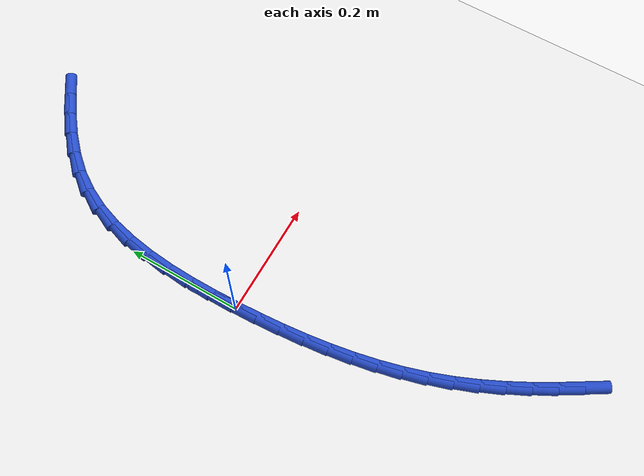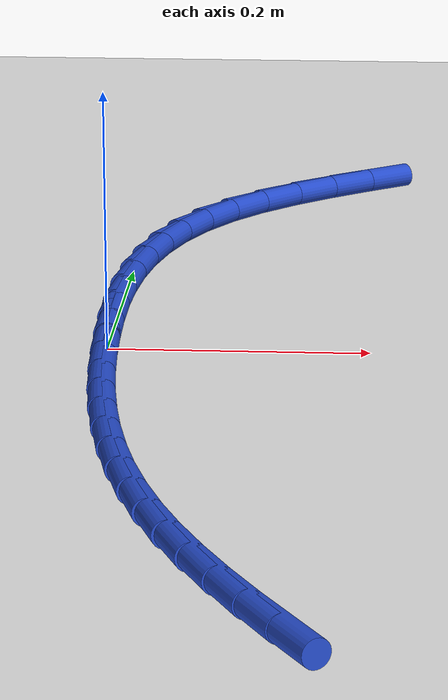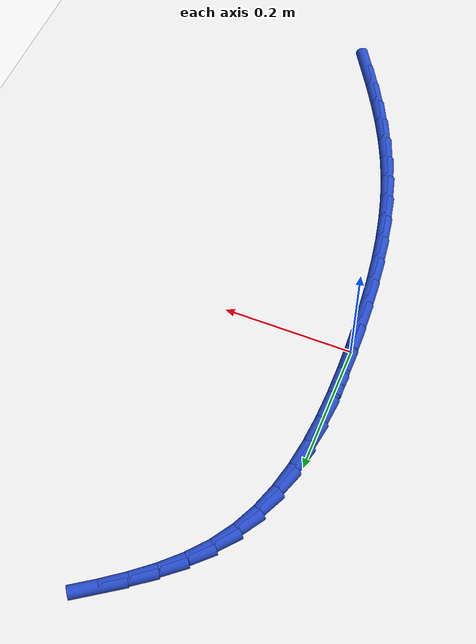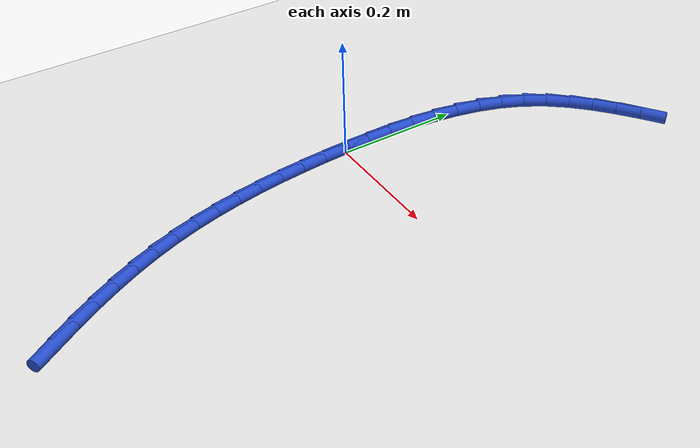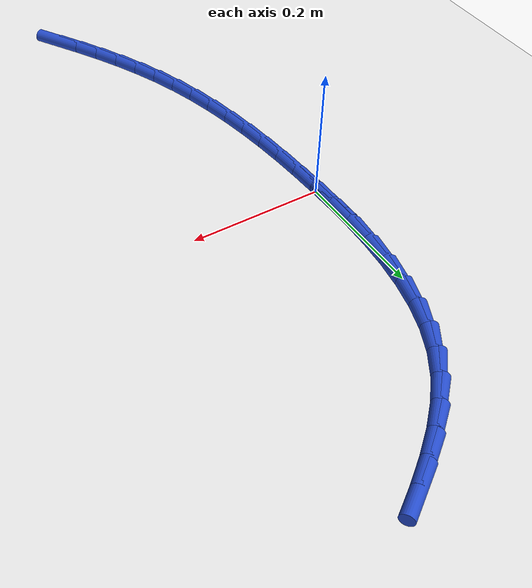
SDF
<sdf version="1.6">
 <world name="default">
  <model name="ground_plane">
   <static>1</static>
   <link name="link">
    <collision name="collision">
     <geometry><plane><normal>0 0 1</normal><size>100 100</size></plane></geometry>
     <surface><friction><ode><mu>100</mu><mu2>50</mu2></ode></friction></surface>
    </collision>
    <visual name="visual">
     <cast_shadows>0</cast_shadows>
     <geometry><plane><normal>0 0 1</normal><size>100 100</size></plane></geometry>
     <material>
      <script><uri>file://media/materials/scripts/gazebo.material</uri><name>Gazebo/WhiteGlow</name></script>
     </material>
    </visual>
   </link>
  </model>
  <model name="line">
   <link name="link_0">
    <pose>3.371868756429919e-17 1.3877787807814457e-17 0.01 0 1.57 -1.5402129373418287</pose>
    <collision name="collision">
     <geometry><cylinder><radius>0.01</radius><length>0.08</length></cylinder></geometry>
    </collision>
    <visual name="visual">
     <material>
      <script><name>Gazebo/Blue</name><uri>file://media/materials/scripts/gazebo.material</uri></script>
     </material>
     <geometry><cylinder><radius>0.01</radius><length>0.08</length></cylinder></geometry>
    </visual>
   </link>
   <link name="link_1">
    <pose>-0.001301941402759294 0.04255693956164811 0.01 0 1.57 -1.5693150320624307</pose>
    <collision name="collision">
     <geometry><cylinder><radius>0.01</radius><length>0.08</length></cylinder></geometry>
    </collision>
    <visual name="visual">
     <material>
      <script><name>Gazebo/Blue</name><uri>file://media/materials/scripts/gazebo.material</uri></script>
     </material>
     <geometry><cylinder><radius>0.01</radius><length>0.08</length></cylinder></geometry>
    </visual>
   </link>
   <link name="link_2">
    <pose>-0.0013652244932487027 0.08527837967510893 0.01 0 1.57 1.5328641680909814</pose>
    <collision name="collision">
     <geometry><cylinder><radius>0.01</radius><length>0.08</length></cylinder></geometry>
    </collision>
    <visual name="visual">
     <material>
      <script><name>Gazebo/Blue</name><uri>file://media/materials/scripts/gazebo.material</uri></script>
     </material>
     <geometry><cylinder><radius>0.01</radius><length>0.08</length></cylinder></geometry>
    </visual>
   </link>
   <link name="link_3">
    <pose>0.00024713933660895594 0.12776450477019138 0.01 0 1.57 1.4820240221549235</pose>
    <collision name="collision">
     <geometry><cylinder><radius>0.01</radius><length>0.08</length></cylinder></geometry>
    </collision>
    <visual name="visual">
     <material>
      <script><name>Gazebo/Blue</name><uri>file://media/materials/scripts/gazebo.material</uri></script>
     </material>
     <geometry><cylinder><radius>0.01</radius><length>0.08</length></cylinder></geometry>
    </visual>
   </link>
   <link name="link_4">
    <pose>0.003972138694890834 0.16961549927670438 0.01 0 1.57 1.4182611296050296</pose>
    <collision name="collision">
     <geometry><cylinder><radius>0.01</radius><length>0.08</length></cylinder></geometry>
    </collision>
    <visual name="visual">
     <material>
      <script><name>Gazebo/Blue</name><uri>file://media/materials/scripts/gazebo.material</uri></script>
     </material>
     <geometry><cylinder><radius>0.01</radius><length>0.08</length></cylinder></geometry>
    </visual>
   </link>
   <link name="link_5">
    <pose>0.010246762189674083 0.21043154762445682 0.01 0 1.57 1.3398247356249542</pose>
    <collision name="collision">
     <geometry><cylinder><radius>0.01</radius><length>0.08</length></cylinder></geometry>
    </collision>
    <visual name="visual">
     <material>
      <script><name>Gazebo/Blue</name><uri>file://media/materials/scripts/gazebo.material</uri></script>
     </material>
     <geometry><cylinder><radius>0.01</radius><length>0.08</length></cylinder></geometry>
    </visual>
   </link>
   <link name="link_6">
    <pose>0.01950799842903584 0.2498128342432576 0.01 0 1.57 1.2449939007286595</pose>
    <collision name="collision">
     <geometry><cylinder><radius>0.01</radius><length>0.08</length></cylinder></geometry>
    </collision>
    <visual name="visual">
     <material>
      <script><name>Gazebo/Blue</name><uri>file://media/materials/scripts/gazebo.material</uri></script>
     </material>
     <geometry><cylinder><radius>0.01</radius><length>0.08</length></cylinder></geometry>
    </visual>
   </link>
   <link name="link_7">
    <pose>0.03219283602105327 0.28735954356291565 0.01 0 1.57 1.1326274270484658</pose>
    <collision name="collision">
     <geometry><cylinder><radius>0.01</radius><length>0.08</length></cylinder></geometry>
    </collision>
    <visual name="visual">
     <material>
      <script><name>Gazebo/Blue</name><uri>file://media/materials/scripts/gazebo.material</uri></script>
     </material>
     <geometry><cylinder><radius>0.01</radius><length>0.08</length></cylinder></geometry>
    </visual>
   </link>
   <link name="link_8">
    <pose>0.048738263573803536 0.3226718600132399 0.01 0 1.57 1.0034730099232079</pose>
    <collision name="collision">
     <geometry><cylinder><radius>0.01</radius><length>0.08</length></cylinder></geometry>
    </collision>
    <visual name="visual">
     <material>
      <script><name>Gazebo/Blue</name><uri>file://media/materials/scripts/gazebo.material</uri></script>
     </material>
     <geometry><cylinder><radius>0.01</radius><length>0.08</length></cylinder></geometry>
    </visual>
   </link>
   <link name="link_9">
    <pose>0.06956723937037929 0.35536021585902394 0.01 0 1.57 0.8757069126929217</pose>
    <collision name="collision">
     <geometry><cylinder><radius>0.01</radius><length>0.08</length></cylinder></geometry>
    </collision>
    <visual name="visual">
     <material>
      <script><name>Gazebo/Blue</name><uri>file://media/materials/scripts/gazebo.material</uri></script>
     </material>
     <geometry><cylinder><radius>0.01</radius><length>0.08</length></cylinder></geometry>
    </visual>
   </link>
   <link name="link_10">
    <pose>0.09461251286339317 0.3853930948862107 0.01 0 1.57 0.7712299344867344</pose>
    <collision name="collision">
     <geometry><cylinder><radius>0.01</radius><length>0.08</length></cylinder></geometry>
    </collision>
    <visual name="visual">
     <material>
      <script><name>Gazebo/Blue</name><uri>file://media/materials/scripts/gazebo.material</uri></script>
     </material>
     <geometry><cylinder><radius>0.01</radius><length>0.08</length></cylinder></geometry>
    </visual>
   </link>
   <link name="link_11">
    <pose>0.12320025709258224 0.41318202799417475 0.01 0 1.57 0.6910021167794856</pose>
    <collision name="collision">
     <geometry><cylinder><radius>0.01</radius><length>0.08</length></cylinder></geometry>
    </collision>
    <visual name="visual">
     <material>
      <script><name>Gazebo/Blue</name><uri>file://media/materials/scripts/gazebo.material</uri></script>
     </material>
     <geometry><cylinder><radius>0.01</radius><length>0.08</length></cylinder></geometry>
    </visual>
   </link>
   <link name="link_12">
    <pose>0.15461900975855827 0.439166035163647 0.01 0 1.57 0.6332014041513747</pose>
    <collision name="collision">
     <geometry><cylinder><radius>0.01</radius><length>0.08</length></cylinder></geometry>
    </collision>
    <visual name="visual">
     <material>
      <script><name>Gazebo/Blue</name><uri>file://media/materials/scripts/gazebo.material</uri></script>
     </material>
     <geometry><cylinder><radius>0.01</radius><length>0.08</length></cylinder></geometry>
    </visual>
   </link>
   <link name="link_13">
    <pose>0.1881573085619332 0.46378413637535887 0.01 0 1.57 0.5957600893504336</pose>
    <collision name="collision">
     <geometry><cylinder><radius>0.01</radius><length>0.08</length></cylinder></geometry>
    </collision>
    <visual name="visual">
     <material>
      <script><name>Gazebo/Blue</name><uri>file://media/materials/scripts/gazebo.material</uri></script>
     </material>
     <geometry><cylinder><radius>0.01</radius><length>0.08</length></cylinder></geometry>
    </visual>
   </link>
   <link name="link_166">
    <pose>0.1611292369674199 -0.535985521242266 0.01 0 1.57 -1.0142629888588004</pose>
    <collision name="collision">
     <geometry><cylinder><radius>0.01</radius><length>0.08</length></cylinder></geometry>
    </collision>
    <visual name="visual">
     <material>
      <script><name>Gazebo/Blue</name><uri>file://media/materials/scripts/gazebo.material</uri></script>
     </material>
     <geometry><cylinder><radius>0.01</radius><length>0.08</length></cylinder></geometry>
    </visual>
   </link>
   <link name="link_167">
    <pose>0.13956504766593833 -0.5013236901095532 0.01 0 1.57 -1.0431535422684235</pose>
    <collision name="collision">
     <geometry><cylinder><radius>0.01</radius><length>0.08</length></cylinder></geometry>
    </collision>
    <visual name="visual">
     <material>
      <script><name>Gazebo/Blue</name><uri>file://media/materials/scripts/gazebo.material</uri></script>
     </material>
     <geometry><cylinder><radius>0.01</radius><length>0.08</length></cylinder></geometry>
    </visual>
   </link>
   <link name="link_168">
    <pose>0.11908568219862134 -0.46618136108957353 0.01 0 1.57 -1.077406910790747</pose>
    <collision name="collision">
     <geometry><cylinder><radius>0.01</radius><length>0.08</length></cylinder></geometry>
    </collision>
    <visual name="visual">
     <material>
      <script><name>Gazebo/Blue</name><uri>file://media/materials/scripts/gazebo.material</uri></script>
     </material>
     <geometry><cylinder><radius>0.01</radius><length>0.08</length></cylinder></geometry>
    </visual>
   </link>
   <link name="link_169">
    <pose>0.09991382340952183 -0.4305293532294169 0.01 0 1.57 -1.1172294116150479</pose>
    <collision name="collision">
     <geometry><cylinder><radius>0.01</radius><length>0.08</length></cylinder></geometry>
    </collision>
    <visual name="visual">
     <material>
      <script><name>Gazebo/Blue</name><uri>file://media/materials/scripts/gazebo.material</uri></script>
     </material>
     <geometry><cylinder><radius>0.01</radius><length>0.08</length></cylinder></geometry>
    </visual>
   </link>
   <link name="link_170">
    <pose>0.08227215414269248 -0.3943384855761724 0.01 0 1.57 -1.1628064555303363</pose>
    <collision name="collision">
     <geometry><cylinder><radius>0.01</radius><length>0.08</length></cylinder></geometry>
    </collision>
    <visual name="visual">
     <material>
      <script><name>Gazebo/Blue</name><uri>file://media/materials/scripts/gazebo.material</uri></script>
     </material>
     <geometry><cylinder><radius>0.01</radius><length>0.08</length></cylinder></geometry>
    </visual>
   </link>
   <link name="link_171">
    <pose>0.06638335724218687 -0.3575795771769316 0.01 0 1.57 -1.2139691390899412</pose>
    <collision name="collision">
     <geometry><cylinder><radius>0.01</radius><length>0.08</length></cylinder></geometry>
    </collision>
    <visual name="visual">
     <material>
      <script><name>Gazebo/Blue</name><uri>file://media/materials/scripts/gazebo.material</uri></script>
     </material>
     <geometry><cylinder><radius>0.01</radius><length>0.08</length></cylinder></geometry>
    </visual>
   </link>
   <link name="link_172">
    <pose>0.05245797946557507 -0.3202245756479903 0.01 0 1.57 -1.2658917078835252</pose>
    <collision name="collision">
     <geometry><cylinder><radius>0.01</radius><length>0.08</length></cylinder></geometry>
    </collision>
    <visual name="visual">
     <material>
      <script><name>Gazebo/Blue</name><uri>file://media/materials/scripts/gazebo.material</uri></script>
     </material>
     <geometry><cylinder><radius>0.01</radius><length>0.08</length></cylinder></geometry>
    </visual>
   </link>
   <link name="link_173">
    <pose>0.04051096779702367 -0.28226361798501615 0.01 0 1.57 -1.3143493324695819</pose>
    <collision name="collision">
     <geometry><cylinder><radius>0.01</radius><length>0.08</length></cylinder></geometry>
    </collision>
    <visual name="visual">
     <material>
      <script><name>Gazebo/Blue</name><uri>file://media/materials/scripts/gazebo.material</uri></script>
     </material>
     <geometry><cylinder><radius>0.01</radius><length>0.08</length></cylinder></geometry>
    </visual>
   </link>
   <link name="link_174">
    <pose>0.030399193940936983 -0.24370154105363362 0.01 0 1.57 -1.3588924650463416</pose>
    <collision name="collision">
     <geometry><cylinder><radius>0.01</radius><length>0.08</length></cylinder></geometry>
    </collision>
    <visual name="visual">
     <material>
      <script><name>Gazebo/Blue</name><uri>file://media/materials/scripts/gazebo.material</uri></script>
     </material>
     <geometry><cylinder><radius>0.01</radius><length>0.08</length></cylinder></geometry>
    </visual>
   </link>
   <link name="link_175">
    <pose>0.021975005310418988 -0.20454360244618633 0.01 0 1.57 -1.3993023855428395</pose>
    <collision name="collision">
     <geometry><cylinder><radius>0.01</radius><length>0.08</length></cylinder></geometry>
    </collision>
    <visual name="visual">
     <material>
      <script><name>Gazebo/Blue</name><uri>file://media/materials/scripts/gazebo.material</uri></script>
     </material>
     <geometry><cylinder><radius>0.01</radius><length>0.08</length></cylinder></geometry>
    </visual>
   </link>
   <link name="link_176">
    <pose>0.015090749318573597 -0.16479505975501696 0.01 0 1.57 -1.4354657721664448</pose>
    <collision name="collision">
     <geometry><cylinder><radius>0.01</radius><length>0.08</length></cylinder></geometry>
    </collision>
    <visual name="visual">
     <material>
      <script><name>Gazebo/Blue</name><uri>file://media/materials/scripts/gazebo.material</uri></script>
     </material>
     <geometry><cylinder><radius>0.01</radius><length>0.08</length></cylinder></geometry>
    </visual>
   </link>
   <link name="link_177">
    <pose>0.009598773378505092 -0.1244611705724706 0.01 0 1.57 -1.4673551831891063</pose>
    <collision name="collision">
     <geometry><cylinder><radius>0.01</radius><length>0.08</length></cylinder></geometry>
    </collision>
    <visual name="visual">
     <material>
      <script><name>Gazebo/Blue</name><uri>file://media/materials/scripts/gazebo.material</uri></script>
     </material>
     <geometry><cylinder><radius>0.01</radius><length>0.08</length></cylinder></geometry>
    </visual>
   </link>
   <link name="link_178">
    <pose>0.0053514249033173155 -0.08354719249088993 0.01 0 1.57 -1.4950086707947023</pose>
    <collision name="collision">
     <geometry><cylinder><radius>0.01</radius><length>0.08</length></cylinder></geometry>
    </collision>
    <visual name="visual">
     <material>
      <script><name>Gazebo/Blue</name><uri>file://media/materials/scripts/gazebo.material</uri></script>
     </material>
     <geometry><cylinder><radius>0.01</radius><length>0.08</length></cylinder></geometry>
    </visual>
   </link>
   <link name="link_179">
    <pose>0.0022010513061142913 -0.04205838310261851 0.01 0 1.57 -1.518510788216432</pose>
    <collision name="collision">
     <geometry><cylinder><radius>0.01</radius><length>0.08</length></cylinder></geometry>
    </collision>
    <visual name="visual">
     <material>
      <script><name>Gazebo/Blue</name><uri>file://media/materials/scripts/gazebo.material</uri></script>
     </material>
     <geometry><cylinder><radius>0.01</radius><length>0.08</length></cylinder></geometry>
    </visual>
   </link>
   <link name="link_180">
    <pose>1.680513367352532e-17 2.3592239273284576e-16 0.01 0 1.57 -1.5379762768995786</pose>
    <collision name="collision">
     <geometry><cylinder><radius>0.01</radius><length>0.08</length></cylinder></geometry>
    </collision>
    <visual name="visual">
     <material>
      <script><name>Gazebo/Blue</name><uri>file://media/materials/scripts/gazebo.material</uri></script>
     </material>
     <geometry><cylinder><radius>0.01</radius><length>0.08</length></cylinder></geometry>
    </visual>
   </link>
   <link name="link_181">
    <pose>-0.0013993816019214934 0.0426226992246228 0.01 0 1.57 -1.5379762768995784</pose>
    <collision name="collision">
     <geometry><cylinder><radius>0.01</radius><length>0.08</length></cylinder></geometry>
    </collision>
    <visual name="visual">
     <material>
      <script><name>Gazebo/Blue</name><uri>file://media/materials/scripts/gazebo.material</uri></script>
     </material>
     <geometry><cylinder><radius>0.01</radius><length>0.08</length></cylinder></geometry>
    </visual>
   </link>
  </model>
 </world>
</sdf>
